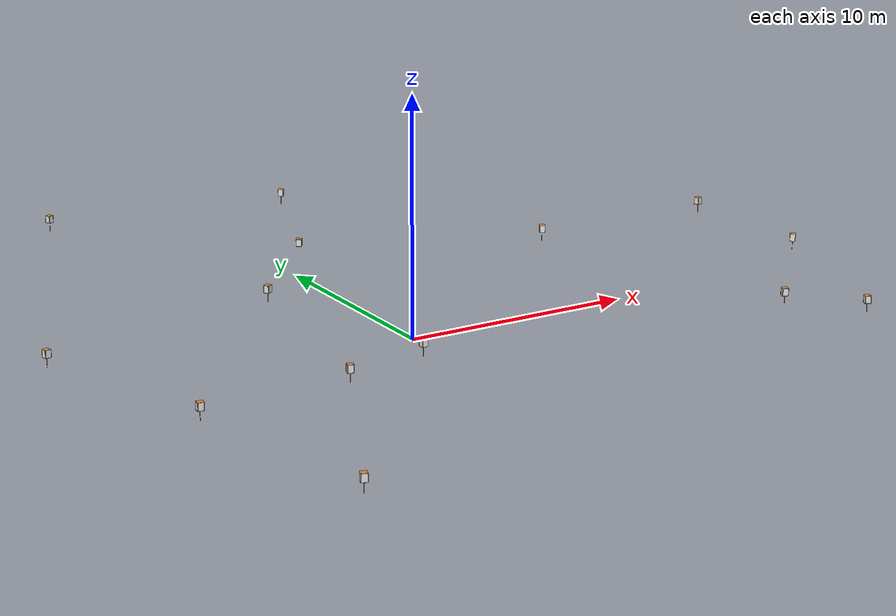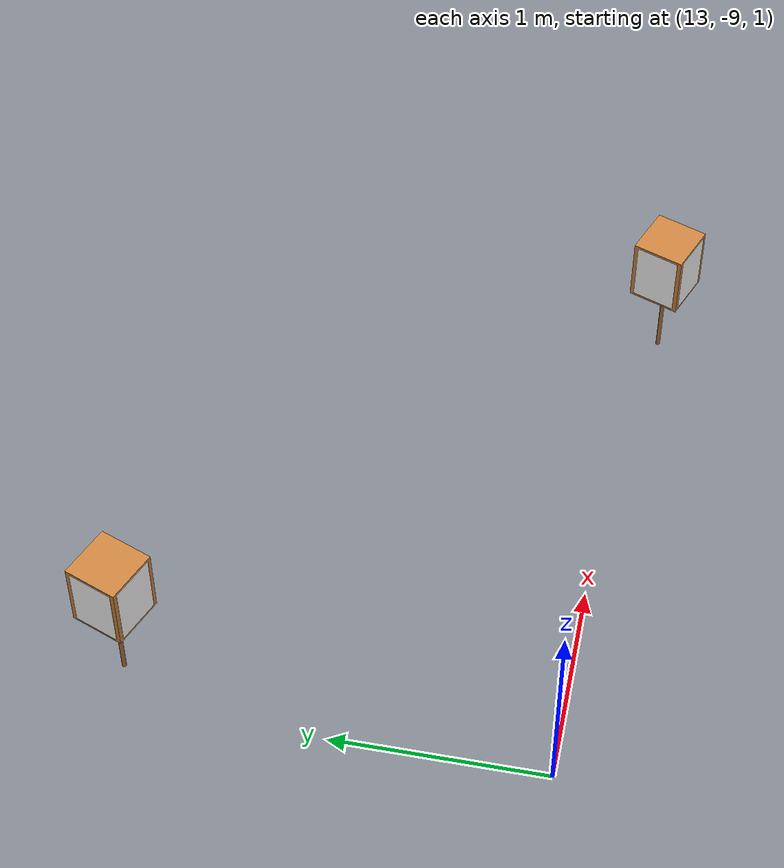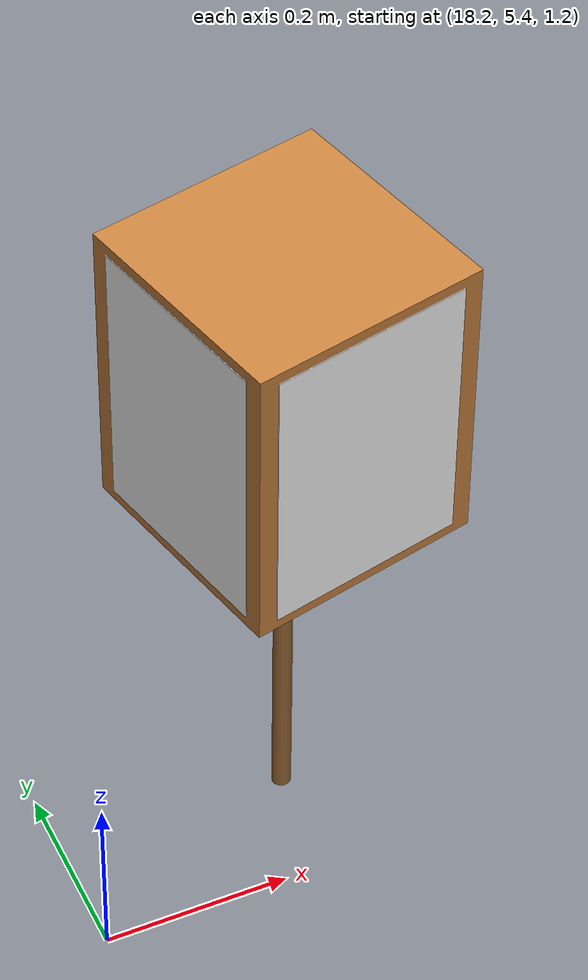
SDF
<sdf version="1.6">
 <world name="marsyard2021">
  <physics name="fast" type="bullet">
   <max_step_size>0.033</max_step_size>
   <real_time_factor>1.0</real_time_factor>
  </physics>
  <plugin filename="gz-sim-physics-system" name="gz::sim::systems::Physics"/>
  <plugin filename="gz-sim-scene-broadcaster-system" name="gz::sim::systems::SceneBroadcaster"/>
  <plugin filename="gz-sim-sensors-system" name="gz::sim::systems::Sensors">
   <render_engine>ogre2</render_engine>
  </plugin>
  <plugin filename="gz-sim-user-commands-system" name="gz::sim::systems::UserCommands"/>
  <plugin filename="WorldControl" name="World control">
   <gz-gui>
    <title>World control</title>
    <property key="showTitleBar" type="bool">false</property>
    <property key="resizable" type="bool">false</property>
    <property key="height" type="double">72</property>
    <property key="width" type="double">121</property>
    <property key="z" type="double">1</property>
    <property key="state" type="string">floating</property>
    <anchors target="3D View"><line own="left" target="left"/><line own="bottom" target="bottom"/></anchors>
   </gz-gui>
   <play_pause>true</play_pause>
   <step>true</step>
   <start_paused>true</start_paused>
   <service>/world/world_demo/control</service>
   <stats_topic>/world/world_demo/stats</stats_topic>
  </plugin>
  <light name="sun" type="directional">
   <pose>0 0 100 0 0.8 0</pose>
   <diffuse>1 1 1 1</diffuse>
   <specular>0.1 0.1 0.1 1</specular>
  </light>
  <scene>
   <ambient>0.6 0.6 0.6 1.0</ambient>
   <sky><clouds><speed>12</speed></clouds></sky>
   <shadows>true</shadows>
   <origin_visual>false</origin_visual>
  </scene>
  <model name="landmark1">
   <pose>-2.60 -5.17 1.42 0 0 0</pose>
   <static>true</static>
   <link name="landmark">
    <visual name="pole_visual">
     <pose>0 0 0.09999999999999999 0 0 0</pose>
     <geometry><cylinder><radius>0.01</radius><length>0.4</length></cylinder></geometry>
     <material>
      <ambient>0.3 0.2 0.1 1</ambient>
      <diffuse>0.6 0.4 0.2 1</diffuse>
      <specular>0.1 0.1 0.1 1</specular>
      <emissive>0 0 0 1</emissive>
     </material>
    </visual>
    <collision name="pole_collision">
     <pose>0 0 0.09999999999999999 0 0 0</pose>
     <geometry><cylinder><radius>0.01</radius><length>0.4</length></cylinder></geometry>
    </collision>
    <visual name="box_visual">
     <pose>0 0 0.45999999999999996 0 0 0</pose>
     <geometry><box><size>0.25 0.25 0.32</size></box></geometry>
     <material>
      <ambient>0.8 0.52 0.25 1.0</ambient>
      <diffuse>0.8 0.52 0.25 1.0</diffuse>
      <specular>0.1 0.1 0.1 1.0</specular>
      <emissive>0.0 0.0 0.0 1.0</emissive>
     </material>
    </visual>
    <collision name="box_collision">
     <pose>0 0 0.45999999999999996 0 0 0</pose>
     <geometry><box><size>0.25 0.25 0.32</size></box></geometry>
    </collision>
    <visual name="sheet1">
     <pose>0 0.1235 0.45999999999999996 0 0 0</pose>
     <geometry><box><size>0.21 0.005 0.297</size></box></geometry>
     <material>
      <double_sided>true</double_sided>
      <ambient>1 1 1 1</ambient>
      <diffuse>1 1 1 1</diffuse>
      <specular>1 1 1 1</specular>
      <emissive>0 0 0 1</emissive>
      <pbr>
       <metal>
        <albedo_map>model://materials/textures/erc_landmark_1.png</albedo_map>
        <roughness>0.5</roughness>
        <metalness>0.0</metalness>
       </metal>
      </pbr>
     </material>
    </visual>
    <visual name="sheet2">
     <pose>0 -0.1235 0.45999999999999996 0 0 0</pose>
     <geometry><box><size>0.21 0.005 0.297</size></box></geometry>
     <material>
      <double_sided>true</double_sided>
      <ambient>1 1 1 1</ambient>
      <diffuse>1 1 1 1</diffuse>
      <specular>1 1 1 1</specular>
      <emissive>0 0 0 1</emissive>
      <pbr>
       <metal>
        <albedo_map>model://materials/textures/erc_landmark_1.png</albedo_map>
        <roughness>0.5</roughness>
        <metalness>0.0</metalness>
       </metal>
      </pbr>
     </material>
    </visual>
    <visual name="sheet3">
     <pose>0.1235 0 0.45999999999999996 0 0 1.5707963267948966</pose>
     <geometry><box><size>0.21 0.005 0.297</size></box></geometry>
     <material>
      <double_sided>true</double_sided>
      <ambient>1 1 1 1</ambient>
      <diffuse>1 1 1 1</diffuse>
      <specular>1 1 1 1</specular>
      <emissive>0 0 0 1</emissive>
      <pbr>
       <metal>
        <albedo_map>model://materials/textures/erc_landmark_1.png</albedo_map>
        <roughness>0.5</roughness>
        <metalness>0.0</metalness>
       </metal>
      </pbr>
     </material>
    </visual>
    <visual name="sheet4">
     <pose>-0.1235 0 0.45999999999999996 0 0 1.5707963267948966</pose>
     <geometry><box><size>0.21 0.005 0.297</size></box></geometry>
     <material>
      <double_sided>true</double_sided>
      <ambient>1 1 1 1</ambient>
      <diffuse>1 1 1 1</diffuse>
      <specular>1 1 1 1</specular>
      <emissive>0 0 0 1</emissive>
      <pbr>
       <metal>
        <albedo_map>model://materials/textures/erc_landmark_1.png</albedo_map>
        <roughness>0.5</roughness>
        <metalness>0.0</metalness>
       </metal>
      </pbr>
     </material>
    </visual>
   </link>
  </model>
  <model name="landmark2">
   <pose>-6.05 -5.75 1.22 0 0 1.33</pose>
   <static>true</static>
   <link name="landmark">
    <visual name="pole_visual">
     <pose>0 0 0.09999999999999999 0 0 0</pose>
     <geometry><cylinder><radius>0.01</radius><length>0.4</length></cylinder></geometry>
     <material>
      <ambient>0.3 0.2 0.1 1</ambient>
      <diffuse>0.6 0.4 0.2 1</diffuse>
      <specular>0.1 0.1 0.1 1</specular>
      <emissive>0 0 0 1</emissive>
     </material>
    </visual>
    <collision name="pole_collision">
     <pose>0 0 0.09999999999999999 0 0 0</pose>
     <geometry><cylinder><radius>0.01</radius><length>0.4</length></cylinder></geometry>
    </collision>
    <visual name="box_visual">
     <pose>0 0 0.45999999999999996 0 0 0</pose>
     <geometry><box><size>0.25 0.25 0.32</size></box></geometry>
     <material>
      <ambient>0.8 0.52 0.25 1.0</ambient>
      <diffuse>0.8 0.52 0.25 1.0</diffuse>
      <specular>0.1 0.1 0.1 1.0</specular>
      <emissive>0.0 0.0 0.0 1.0</emissive>
     </material>
    </visual>
    <collision name="box_collision">
     <pose>0 0 0.45999999999999996 0 0 0</pose>
     <geometry><box><size>0.25 0.25 0.32</size></box></geometry>
    </collision>
    <visual name="sheet1">
     <pose>0 0.1235 0.45999999999999996 0 0 0</pose>
     <geometry><box><size>0.21 0.005 0.297</size></box></geometry>
     <material>
      <double_sided>true</double_sided>
      <ambient>1 1 1 1</ambient>
      <diffuse>1 1 1 1</diffuse>
      <specular>1 1 1 1</specular>
      <emissive>0 0 0 1</emissive>
      <pbr>
       <metal>
        <albedo_map>model://materials/textures/erc_landmark_2.png</albedo_map>
        <roughness>0.5</roughness>
        <metalness>0.0</metalness>
       </metal>
      </pbr>
     </material>
    </visual>
    <visual name="sheet2">
     <pose>0 -0.1235 0.45999999999999996 0 0 0</pose>
     <geometry><box><size>0.21 0.005 0.297</size></box></geometry>
     <material>
      <double_sided>true</double_sided>
      <ambient>1 1 1 1</ambient>
      <diffuse>1 1 1 1</diffuse>
      <specular>1 1 1 1</specular>
      <emissive>0 0 0 1</emissive>
      <pbr>
       <metal>
        <albedo_map>model://materials/textures/erc_landmark_2.png</albedo_map>
        <roughness>0.5</roughness>
        <metalness>0.0</metalness>
       </metal>
      </pbr>
     </material>
    </visual>
    <visual name="sheet3">
     <pose>0.1235 0 0.45999999999999996 0 0 1.5707963267948966</pose>
     <geometry><box><size>0.21 0.005 0.297</size></box></geometry>
     <material>
      <double_sided>true</double_sided>
      <ambient>1 1 1 1</ambient>
      <diffuse>1 1 1 1</diffuse>
      <specular>1 1 1 1</specular>
      <emissive>0 0 0 1</emissive>
      <pbr>
       <metal>
        <albedo_map>model://materials/textures/erc_landmark_2.png</albedo_map>
        <roughness>0.5</roughness>
        <metalness>0.0</metalness>
       </metal>
      </pbr>
     </material>
    </visual>
    <visual name="sheet4">
     <pose>-0.1235 0 0.45999999999999996 0 0 1.5707963267948966</pose>
     <geometry><box><size>0.21 0.005 0.297</size></box></geometry>
     <material>
      <double_sided>true</double_sided>
      <ambient>1 1 1 1</ambient>
      <diffuse>1 1 1 1</diffuse>
      <specular>1 1 1 1</specular>
      <emissive>0 0 0 1</emissive>
      <pbr>
       <metal>
        <albedo_map>model://materials/textures/erc_landmark_2.png</albedo_map>
        <roughness>0.5</roughness>
        <metalness>0.0</metalness>
       </metal>
      </pbr>
     </material>
    </visual>
   </link>
  </model>
  <model name="landmark3">
   <pose>-7.93 18.45 1.21 0 0 0.35</pose>
   <static>true</static>
   <link name="landmark">
    <visual name="pole_visual">
     <pose>0 0 0.09999999999999999 0 0 0</pose>
     <geometry><cylinder><radius>0.01</radius><length>0.4</length></cylinder></geometry>
     <material>
      <ambient>0.3 0.2 0.1 1</ambient>
      <diffuse>0.6 0.4 0.2 1</diffuse>
      <specular>0.1 0.1 0.1 1</specular>
      <emissive>0 0 0 1</emissive>
     </material>
    </visual>
    <collision name="pole_collision">
     <pose>0 0 0.09999999999999999 0 0 0</pose>
     <geometry><cylinder><radius>0.01</radius><length>0.4</length></cylinder></geometry>
    </collision>
    <visual name="box_visual">
     <pose>0 0 0.45999999999999996 0 0 0</pose>
     <geometry><box><size>0.25 0.25 0.32</size></box></geometry>
     <material>
      <ambient>0.8 0.52 0.25 1.0</ambient>
      <diffuse>0.8 0.52 0.25 1.0</diffuse>
      <specular>0.1 0.1 0.1 1.0</specular>
      <emissive>0.0 0.0 0.0 1.0</emissive>
     </material>
    </visual>
    <collision name="box_collision">
     <pose>0 0 0.45999999999999996 0 0 0</pose>
     <geometry><box><size>0.25 0.25 0.32</size></box></geometry>
    </collision>
    <visual name="sheet1">
     <pose>0 0.1235 0.45999999999999996 0 0 0</pose>
     <geometry><box><size>0.21 0.005 0.297</size></box></geometry>
     <material>
      <double_sided>true</double_sided>
      <ambient>1 1 1 1</ambient>
      <diffuse>1 1 1 1</diffuse>
      <specular>1 1 1 1</specular>
      <emissive>0 0 0 1</emissive>
      <pbr>
       <metal>
        <albedo_map>model://materials/textures/erc_landmark_3.png</albedo_map>
        <roughness>0.5</roughness>
        <metalness>0.0</metalness>
       </metal>
      </pbr>
     </material>
    </visual>
    <visual name="sheet2">
     <pose>0 -0.1235 0.45999999999999996 0 0 0</pose>
     <geometry><box><size>0.21 0.005 0.297</size></box></geometry>
     <material>
      <double_sided>true</double_sided>
      <ambient>1 1 1 1</ambient>
      <diffuse>1 1 1 1</diffuse>
      <specular>1 1 1 1</specular>
      <emissive>0 0 0 1</emissive>
      <pbr>
       <metal>
        <albedo_map>model://materials/textures/erc_landmark_3.png</albedo_map>
        <roughness>0.5</roughness>
        <metalness>0.0</metalness>
       </metal>
      </pbr>
     </material>
    </visual>
    <visual name="sheet3">
     <pose>0.1235 0 0.45999999999999996 0 0 1.5707963267948966</pose>
     <geometry><box><size>0.21 0.005 0.297</size></box></geometry>
     <material>
      <double_sided>true</double_sided>
      <ambient>1 1 1 1</ambient>
      <diffuse>1 1 1 1</diffuse>
      <specular>1 1 1 1</specular>
      <emissive>0 0 0 1</emissive>
      <pbr>
       <metal>
        <albedo_map>model://materials/textures/erc_landmark_3.png</albedo_map>
        <roughness>0.5</roughness>
        <metalness>0.0</metalness>
       </metal>
      </pbr>
     </material>
    </visual>
    <visual name="sheet4">
     <pose>-0.1235 0 0.45999999999999996 0 0 1.5707963267948966</pose>
     <geometry><box><size>0.21 0.005 0.297</size></box></geometry>
     <material>
      <double_sided>true</double_sided>
      <ambient>1 1 1 1</ambient>
      <diffuse>1 1 1 1</diffuse>
      <specular>1 1 1 1</specular>
      <emissive>0 0 0 1</emissive>
      <pbr>
       <metal>
        <albedo_map>model://materials/textures/erc_landmark_3.png</albedo_map>
        <roughness>0.5</roughness>
        <metalness>0.0</metalness>
       </metal>
      </pbr>
     </material>
    </visual>
   </link>
  </model>
  <model name="landmark4">
   <pose>-0.23 9.19 1.29 0 0 0.98</pose>
   <static>true</static>
   <link name="landmark">
    <visual name="pole_visual">
     <pose>0 0 0.09999999999999999 0 0 0</pose>
     <geometry><cylinder><radius>0.01</radius><length>0.4</length></cylinder></geometry>
     <material>
      <ambient>0.3 0.2 0.1 1</ambient>
      <diffuse>0.6 0.4 0.2 1</diffuse>
      <specular>0.1 0.1 0.1 1</specular>
      <emissive>0 0 0 1</emissive>
     </material>
    </visual>
    <collision name="pole_collision">
     <pose>0 0 0.09999999999999999 0 0 0</pose>
     <geometry><cylinder><radius>0.01</radius><length>0.4</length></cylinder></geometry>
    </collision>
    <visual name="box_visual">
     <pose>0 0 0.45999999999999996 0 0 0</pose>
     <geometry><box><size>0.25 0.25 0.32</size></box></geometry>
     <material>
      <ambient>0.8 0.52 0.25 1.0</ambient>
      <diffuse>0.8 0.52 0.25 1.0</diffuse>
      <specular>0.1 0.1 0.1 1.0</specular>
      <emissive>0.0 0.0 0.0 1.0</emissive>
     </material>
    </visual>
    <collision name="box_collision">
     <pose>0 0 0.45999999999999996 0 0 0</pose>
     <geometry><box><size>0.25 0.25 0.32</size></box></geometry>
    </collision>
    <visual name="sheet1">
     <pose>0 0.1235 0.45999999999999996 0 0 0</pose>
     <geometry><box><size>0.21 0.005 0.297</size></box></geometry>
     <material>
      <double_sided>true</double_sided>
      <ambient>1 1 1 1</ambient>
      <diffuse>1 1 1 1</diffuse>
      <specular>1 1 1 1</specular>
      <emissive>0 0 0 1</emissive>
      <pbr>
       <metal>
        <albedo_map>model://materials/textures/erc_landmark_4.png</albedo_map>
        <roughness>0.5</roughness>
        <metalness>0.0</metalness>
       </metal>
      </pbr>
     </material>
    </visual>
    <visual name="sheet2">
     <pose>0 -0.1235 0.45999999999999996 0 0 0</pose>
     <geometry><box><size>0.21 0.005 0.297</size></box></geometry>
     <material>
      <double_sided>true</double_sided>
      <ambient>1 1 1 1</ambient>
      <diffuse>1 1 1 1</diffuse>
      <specular>1 1 1 1</specular>
      <emissive>0 0 0 1</emissive>
      <pbr>
       <metal>
        <albedo_map>model://materials/textures/erc_landmark_4.png</albedo_map>
        <roughness>0.5</roughness>
        <metalness>0.0</metalness>
       </metal>
      </pbr>
     </material>
    </visual>
    <visual name="sheet3">
     <pose>0.1235 0 0.45999999999999996 0 0 1.5707963267948966</pose>
     <geometry><box><size>0.21 0.005 0.297</size></box></geometry>
     <material>
      <double_sided>true</double_sided>
      <ambient>1 1 1 1</ambient>
      <diffuse>1 1 1 1</diffuse>
      <specular>1 1 1 1</specular>
      <emissive>0 0 0 1</emissive>
      <pbr>
       <metal>
        <albedo_map>model://materials/textures/erc_landmark_4.png</albedo_map>
        <roughness>0.5</roughness>
        <metalness>0.0</metalness>
       </metal>
      </pbr>
     </material>
    </visual>
    <visual name="sheet4">
     <pose>-0.1235 0 0.45999999999999996 0 0 1.5707963267948966</pose>
     <geometry><box><size>0.21 0.005 0.297</size></box></geometry>
     <material>
      <double_sided>true</double_sided>
      <ambient>1 1 1 1</ambient>
      <diffuse>1 1 1 1</diffuse>
      <specular>1 1 1 1</specular>
      <emissive>0 0 0 1</emissive>
      <pbr>
       <metal>
        <albedo_map>model://materials/textures/erc_landmark_4.png</albedo_map>
        <roughness>0.5</roughness>
        <metalness>0.0</metalness>
       </metal>
      </pbr>
     </material>
    </visual>
   </link>
  </model>
  <model name="landmark5">
   <pose>-12.3 -6.28 1.16 0 0 1.47</pose>
   <static>true</static>
   <link name="landmark">
    <visual name="pole_visual">
     <pose>0 0 0.09999999999999999 0 0 0</pose>
     <geometry><cylinder><radius>0.01</radius><length>0.4</length></cylinder></geometry>
     <material>
      <ambient>0.3 0.2 0.1 1</ambient>
      <diffuse>0.6 0.4 0.2 1</diffuse>
      <specular>0.1 0.1 0.1 1</specular>
      <emissive>0 0 0 1</emissive>
     </material>
    </visual>
    <collision name="pole_collision">
     <pose>0 0 0.09999999999999999 0 0 0</pose>
     <geometry><cylinder><radius>0.01</radius><length>0.4</length></cylinder></geometry>
    </collision>
    <visual name="box_visual">
     <pose>0 0 0.45999999999999996 0 0 0</pose>
     <geometry><box><size>0.25 0.25 0.32</size></box></geometry>
     <material>
      <ambient>0.8 0.52 0.25 1.0</ambient>
      <diffuse>0.8 0.52 0.25 1.0</diffuse>
      <specular>0.1 0.1 0.1 1.0</specular>
      <emissive>0.0 0.0 0.0 1.0</emissive>
     </material>
    </visual>
    <collision name="box_collision">
     <pose>0 0 0.45999999999999996 0 0 0</pose>
     <geometry><box><size>0.25 0.25 0.32</size></box></geometry>
    </collision>
    <visual name="sheet1">
     <pose>0 0.1235 0.45999999999999996 0 0 0</pose>
     <geometry><box><size>0.21 0.005 0.297</size></box></geometry>
     <material>
      <double_sided>true</double_sided>
      <ambient>1 1 1 1</ambient>
      <diffuse>1 1 1 1</diffuse>
      <specular>1 1 1 1</specular>
      <emissive>0 0 0 1</emissive>
      <pbr>
       <metal>
        <albedo_map>model://materials/textures/erc_landmark_5.png</albedo_map>
        <roughness>0.5</roughness>
        <metalness>0.0</metalness>
       </metal>
      </pbr>
     </material>
    </visual>
    <visual name="sheet2">
     <pose>0 -0.1235 0.45999999999999996 0 0 0</pose>
     <geometry><box><size>0.21 0.005 0.297</size></box></geometry>
     <material>
      <double_sided>true</double_sided>
      <ambient>1 1 1 1</ambient>
      <diffuse>1 1 1 1</diffuse>
      <specular>1 1 1 1</specular>
      <emissive>0 0 0 1</emissive>
      <pbr>
       <metal>
        <albedo_map>model://materials/textures/erc_landmark_5.png</albedo_map>
        <roughness>0.5</roughness>
        <metalness>0.0</metalness>
       </metal>
      </pbr>
     </material>
    </visual>
    <visual name="sheet3">
     <pose>0.1235 0 0.45999999999999996 0 0 1.5707963267948966</pose>
     <geometry><box><size>0.21 0.005 0.297</size></box></geometry>
     <material>
      <double_sided>true</double_sided>
      <ambient>1 1 1 1</ambient>
      <diffuse>1 1 1 1</diffuse>
      <specular>1 1 1 1</specular>
      <emissive>0 0 0 1</emissive>
      <pbr>
       <metal>
        <albedo_map>model://materials/textures/erc_landmark_5.png</albedo_map>
        <roughness>0.5</roughness>
        <metalness>0.0</metalness>
       </metal>
      </pbr>
     </material>
    </visual>
    <visual name="sheet4">
     <pose>-0.1235 0 0.45999999999999996 0 0 1.5707963267948966</pose>
     <geometry><box><size>0.21 0.005 0.297</size></box></geometry>
     <material>
      <double_sided>true</double_sided>
      <ambient>1 1 1 1</ambient>
      <diffuse>1 1 1 1</diffuse>
      <specular>1 1 1 1</specular>
      <emissive>0 0 0 1</emissive>
      <pbr>
       <metal>
        <albedo_map>model://materials/textures/erc_landmark_5.png</albedo_map>
        <roughness>0.5</roughness>
        <metalness>0.0</metalness>
       </metal>
      </pbr>
     </material>
    </visual>
   </link>
  </model>
  <model name="landmark6">
   <pose>18.46 -1.15 1.28 0 0 0.83</pose>
   <static>true</static>
   <link name="landmark">
    <visual name="pole_visual">
     <pose>0 0 0.09999999999999999 0 0 0</pose>
     <geometry><cylinder><radius>0.01</radius><length>0.4</length></cylinder></geometry>
     <material>
      <ambient>0.3 0.2 0.1 1</ambient>
      <diffuse>0.6 0.4 0.2 1</diffuse>
      <specular>0.1 0.1 0.1 1</specular>
      <emissive>0 0 0 1</emissive>
     </material>
    </visual>
    <collision name="pole_collision">
     <pose>0 0 0.09999999999999999 0 0 0</pose>
     <geometry><cylinder><radius>0.01</radius><length>0.4</length></cylinder></geometry>
    </collision>
    <visual name="box_visual">
     <pose>0 0 0.45999999999999996 0 0 0</pose>
     <geometry><box><size>0.25 0.25 0.32</size></box></geometry>
     <material>
      <ambient>0.8 0.52 0.25 1.0</ambient>
      <diffuse>0.8 0.52 0.25 1.0</diffuse>
      <specular>0.1 0.1 0.1 1.0</specular>
      <emissive>0.0 0.0 0.0 1.0</emissive>
     </material>
    </visual>
    <collision name="box_collision">
     <pose>0 0 0.45999999999999996 0 0 0</pose>
     <geometry><box><size>0.25 0.25 0.32</size></box></geometry>
    </collision>
    <visual name="sheet1">
     <pose>0 0.1235 0.45999999999999996 0 0 0</pose>
     <geometry><box><size>0.21 0.005 0.297</size></box></geometry>
     <material>
      <double_sided>true</double_sided>
      <ambient>1 1 1 1</ambient>
      <diffuse>1 1 1 1</diffuse>
      <specular>1 1 1 1</specular>
      <emissive>0 0 0 1</emissive>
      <pbr>
       <metal>
        <albedo_map>model://materials/textures/erc_landmark_6.png</albedo_map>
        <roughness>0.5</roughness>
        <metalness>0.0</metalness>
       </metal>
      </pbr>
     </material>
    </visual>
    <visual name="sheet2">
     <pose>0 -0.1235 0.45999999999999996 0 0 0</pose>
     <geometry><box><size>0.21 0.005 0.297</size></box></geometry>
     <material>
      <double_sided>true</double_sided>
      <ambient>1 1 1 1</ambient>
      <diffuse>1 1 1 1</diffuse>
      <specular>1 1 1 1</specular>
      <emissive>0 0 0 1</emissive>
      <pbr>
       <metal>
        <albedo_map>model://materials/textures/erc_landmark_6.png</albedo_map>
        <roughness>0.5</roughness>
        <metalness>0.0</metalness>
       </metal>
      </pbr>
     </material>
    </visual>
    <visual name="sheet3">
     <pose>0.1235 0 0.45999999999999996 0 0 1.5707963267948966</pose>
     <geometry><box><size>0.21 0.005 0.297</size></box></geometry>
     <material>
      <double_sided>true</double_sided>
      <ambient>1 1 1 1</ambient>
      <diffuse>1 1 1 1</diffuse>
      <specular>1 1 1 1</specular>
      <emissive>0 0 0 1</emissive>
      <pbr>
       <metal>
        <albedo_map>model://materials/textures/erc_landmark_6.png</albedo_map>
        <roughness>0.5</roughness>
        <metalness>0.0</metalness>
       </metal>
      </pbr>
     </material>
    </visual>
    <visual name="sheet4">
     <pose>-0.1235 0 0.45999999999999996 0 0 1.5707963267948966</pose>
     <geometry><box><size>0.21 0.005 0.297</size></box></geometry>
     <material>
      <double_sided>true</double_sided>
      <ambient>1 1 1 1</ambient>
      <diffuse>1 1 1 1</diffuse>
      <specular>1 1 1 1</specular>
      <emissive>0 0 0 1</emissive>
      <pbr>
       <metal>
        <albedo_map>model://materials/textures/erc_landmark_6.png</albedo_map>
        <roughness>0.5</roughness>
        <metalness>0.0</metalness>
       </metal>
      </pbr>
     </material>
    </visual>
   </link>
  </model>
  <model name="landmark7">
   <pose>13.07 -7.09 1.32 0 0 1.19</pose>
   <static>true</static>
   <link name="landmark">
    <visual name="pole_visual">
     <pose>0 0 0.09999999999999999 0 0 0</pose>
     <geometry><cylinder><radius>0.01</radius><length>0.4</length></cylinder></geometry>
     <material>
      <ambient>0.3 0.2 0.1 1</ambient>
      <diffuse>0.6 0.4 0.2 1</diffuse>
      <specular>0.1 0.1 0.1 1</specular>
      <emissive>0 0 0 1</emissive>
     </material>
    </visual>
    <collision name="pole_collision">
     <pose>0 0 0.09999999999999999 0 0 0</pose>
     <geometry><cylinder><radius>0.01</radius><length>0.4</length></cylinder></geometry>
    </collision>
    <visual name="box_visual">
     <pose>0 0 0.45999999999999996 0 0 0</pose>
     <geometry><box><size>0.25 0.25 0.32</size></box></geometry>
     <material>
      <ambient>0.8 0.52 0.25 1.0</ambient>
      <diffuse>0.8 0.52 0.25 1.0</diffuse>
      <specular>0.1 0.1 0.1 1.0</specular>
      <emissive>0.0 0.0 0.0 1.0</emissive>
     </material>
    </visual>
    <collision name="box_collision">
     <pose>0 0 0.45999999999999996 0 0 0</pose>
     <geometry><box><size>0.25 0.25 0.32</size></box></geometry>
    </collision>
    <visual name="sheet1">
     <pose>0 0.1235 0.45999999999999996 0 0 0</pose>
     <geometry><box><size>0.21 0.005 0.297</size></box></geometry>
     <material>
      <double_sided>true</double_sided>
      <ambient>1 1 1 1</ambient>
      <diffuse>1 1 1 1</diffuse>
      <specular>1 1 1 1</specular>
      <emissive>0 0 0 1</emissive>
      <pbr>
       <metal>
        <albedo_map>model://materials/textures/erc_landmark_7.png</albedo_map>
        <roughness>0.5</roughness>
        <metalness>0.0</metalness>
       </metal>
      </pbr>
     </material>
    </visual>
    <visual name="sheet2">
     <pose>0 -0.1235 0.45999999999999996 0 0 0</pose>
     <geometry><box><size>0.21 0.005 0.297</size></box></geometry>
     <material>
      <double_sided>true</double_sided>
      <ambient>1 1 1 1</ambient>
      <diffuse>1 1 1 1</diffuse>
      <specular>1 1 1 1</specular>
      <emissive>0 0 0 1</emissive>
      <pbr>
       <metal>
        <albedo_map>model://materials/textures/erc_landmark_7.png</albedo_map>
        <roughness>0.5</roughness>
        <metalness>0.0</metalness>
       </metal>
      </pbr>
     </material>
    </visual>
    <visual name="sheet3">
     <pose>0.1235 0 0.45999999999999996 0 0 1.5707963267948966</pose>
     <geometry><box><size>0.21 0.005 0.297</size></box></geometry>
     <material>
      <double_sided>true</double_sided>
      <ambient>1 1 1 1</ambient>
      <diffuse>1 1 1 1</diffuse>
      <specular>1 1 1 1</specular>
      <emissive>0 0 0 1</emissive>
      <pbr>
       <metal>
        <albedo_map>model://materials/textures/erc_landmark_7.png</albedo_map>
        <roughness>0.5</roughness>
        <metalness>0.0</metalness>
       </metal>
      </pbr>
     </material>
    </visual>
    <visual name="sheet4">
     <pose>-0.1235 0 0.45999999999999996 0 0 1.5707963267948966</pose>
     <geometry><box><size>0.21 0.005 0.297</size></box></geometry>
     <material>
      <double_sided>true</double_sided>
      <ambient>1 1 1 1</ambient>
      <diffuse>1 1 1 1</diffuse>
      <specular>1 1 1 1</specular>
      <emissive>0 0 0 1</emissive>
      <pbr>
       <metal>
        <albedo_map>model://materials/textures/erc_landmark_7.png</albedo_map>
        <roughness>0.5</roughness>
        <metalness>0.0</metalness>
       </metal>
      </pbr>
     </material>
    </visual>
   </link>
  </model>
  <model name="landmark8">
   <pose>3.05 17.20 1.19 0 0 0.95</pose>
   <static>true</static>
   <link name="landmark">
    <visual name="pole_visual">
     <pose>0 0 0.09999999999999999 0 0 0</pose>
     <geometry><cylinder><radius>0.01</radius><length>0.4</length></cylinder></geometry>
     <material>
      <ambient>0.3 0.2 0.1 1</ambient>
      <diffuse>0.6 0.4 0.2 1</diffuse>
      <specular>0.1 0.1 0.1 1</specular>
      <emissive>0 0 0 1</emissive>
     </material>
    </visual>
    <collision name="pole_collision">
     <pose>0 0 0.09999999999999999 0 0 0</pose>
     <geometry><cylinder><radius>0.01</radius><length>0.4</length></cylinder></geometry>
    </collision>
    <visual name="box_visual">
     <pose>0 0 0.45999999999999996 0 0 0</pose>
     <geometry><box><size>0.25 0.25 0.32</size></box></geometry>
     <material>
      <ambient>0.8 0.52 0.25 1.0</ambient>
      <diffuse>0.8 0.52 0.25 1.0</diffuse>
      <specular>0.1 0.1 0.1 1.0</specular>
      <emissive>0.0 0.0 0.0 1.0</emissive>
     </material>
    </visual>
    <collision name="box_collision">
     <pose>0 0 0.45999999999999996 0 0 0</pose>
     <geometry><box><size>0.25 0.25 0.32</size></box></geometry>
    </collision>
    <visual name="sheet1">
     <pose>0 0.1235 0.45999999999999996 0 0 0</pose>
     <geometry><box><size>0.21 0.005 0.297</size></box></geometry>
     <material>
      <double_sided>true</double_sided>
      <ambient>1 1 1 1</ambient>
      <diffuse>1 1 1 1</diffuse>
      <specular>1 1 1 1</specular>
      <emissive>0 0 0 1</emissive>
      <pbr>
       <metal>
        <albedo_map>model://materials/textures/erc_landmark_8.png</albedo_map>
        <roughness>0.5</roughness>
        <metalness>0.0</metalness>
       </metal>
      </pbr>
     </material>
    </visual>
    <visual name="sheet2">
     <pose>0 -0.1235 0.45999999999999996 0 0 0</pose>
     <geometry><box><size>0.21 0.005 0.297</size></box></geometry>
     <material>
      <double_sided>true</double_sided>
      <ambient>1 1 1 1</ambient>
      <diffuse>1 1 1 1</diffuse>
      <specular>1 1 1 1</specular>
      <emissive>0 0 0 1</emissive>
      <pbr>
       <metal>
        <albedo_map>model://materials/textures/erc_landmark_8.png</albedo_map>
        <roughness>0.5</roughness>
        <metalness>0.0</metalness>
       </metal>
      </pbr>
     </material>
    </visual>
    <visual name="sheet3">
     <pose>0.1235 0 0.45999999999999996 0 0 1.5707963267948966</pose>
     <geometry><box><size>0.21 0.005 0.297</size></box></geometry>
     <material>
      <double_sided>true</double_sided>
      <ambient>1 1 1 1</ambient>
      <diffuse>1 1 1 1</diffuse>
      <specular>1 1 1 1</specular>
      <emissive>0 0 0 1</emissive>
      <pbr>
       <metal>
        <albedo_map>model://materials/textures/erc_landmark_8.png</albedo_map>
        <roughness>0.5</roughness>
        <metalness>0.0</metalness>
       </metal>
      </pbr>
     </material>
    </visual>
    <visual name="sheet4">
     <pose>-0.1235 0 0.45999999999999996 0 0 1.5707963267948966</pose>
     <geometry><box><size>0.21 0.005 0.297</size></box></geometry>
     <material>
      <double_sided>true</double_sided>
      <ambient>1 1 1 1</ambient>
      <diffuse>1 1 1 1</diffuse>
      <specular>1 1 1 1</specular>
      <emissive>0 0 0 1</emissive>
      <pbr>
       <metal>
        <albedo_map>model://materials/textures/erc_landmark_8.png</albedo_map>
        <roughness>0.5</roughness>
        <metalness>0.0</metalness>
       </metal>
      </pbr>
     </material>
    </visual>
   </link>
  </model>
  <model name="landmark9">
   <pose>-14.82 1.52 1.20 0 0 0.16</pose>
   <static>true</static>
   <link name="landmark">
    <visual name="pole_visual">
     <pose>0 0 0.09999999999999999 0 0 0</pose>
     <geometry><cylinder><radius>0.01</radius><length>0.4</length></cylinder></geometry>
     <material>
      <ambient>0.3 0.2 0.1 1</ambient>
      <diffuse>0.6 0.4 0.2 1</diffuse>
      <specular>0.1 0.1 0.1 1</specular>
      <emissive>0 0 0 1</emissive>
     </material>
    </visual>
    <collision name="pole_collision">
     <pose>0 0 0.09999999999999999 0 0 0</pose>
     <geometry><cylinder><radius>0.01</radius><length>0.4</length></cylinder></geometry>
    </collision>
    <visual name="box_visual">
     <pose>0 0 0.45999999999999996 0 0 0</pose>
     <geometry><box><size>0.25 0.25 0.32</size></box></geometry>
     <material>
      <ambient>0.8 0.52 0.25 1.0</ambient>
      <diffuse>0.8 0.52 0.25 1.0</diffuse>
      <specular>0.1 0.1 0.1 1.0</specular>
      <emissive>0.0 0.0 0.0 1.0</emissive>
     </material>
    </visual>
    <collision name="box_collision">
     <pose>0 0 0.45999999999999996 0 0 0</pose>
     <geometry><box><size>0.25 0.25 0.32</size></box></geometry>
    </collision>
    <visual name="sheet1">
     <pose>0 0.1235 0.45999999999999996 0 0 0</pose>
     <geometry><box><size>0.21 0.005 0.297</size></box></geometry>
     <material>
      <double_sided>true</double_sided>
      <ambient>1 1 1 1</ambient>
      <diffuse>1 1 1 1</diffuse>
      <specular>1 1 1 1</specular>
      <emissive>0 0 0 1</emissive>
      <pbr>
       <metal>
        <albedo_map>model://materials/textures/erc_landmark_9.png</albedo_map>
        <roughness>0.5</roughness>
        <metalness>0.0</metalness>
       </metal>
      </pbr>
     </material>
    </visual>
    <visual name="sheet2">
     <pose>0 -0.1235 0.45999999999999996 0 0 0</pose>
     <geometry><box><size>0.21 0.005 0.297</size></box></geometry>
     <material>
      <double_sided>true</double_sided>
      <ambient>1 1 1 1</ambient>
      <diffuse>1 1 1 1</diffuse>
      <specular>1 1 1 1</specular>
      <emissive>0 0 0 1</emissive>
      <pbr>
       <metal>
        <albedo_map>model://materials/textures/erc_landmark_9.png</albedo_map>
        <roughness>0.5</roughness>
        <metalness>0.0</metalness>
       </metal>
      </pbr>
     </material>
    </visual>
    <visual name="sheet3">
     <pose>0.1235 0 0.45999999999999996 0 0 1.5707963267948966</pose>
     <geometry><box><size>0.21 0.005 0.297</size></box></geometry>
     <material>
      <double_sided>true</double_sided>
      <ambient>1 1 1 1</ambient>
      <diffuse>1 1 1 1</diffuse>
      <specular>1 1 1 1</specular>
      <emissive>0 0 0 1</emissive>
      <pbr>
       <metal>
        <albedo_map>model://materials/textures/erc_landmark_9.png</albedo_map>
        <roughness>0.5</roughness>
        <metalness>0.0</metalness>
       </metal>
      </pbr>
     </material>
    </visual>
    <visual name="sheet4">
     <pose>-0.1235 0 0.45999999999999996 0 0 1.5707963267948966</pose>
     <geometry><box><size>0.21 0.005 0.297</size></box></geometry>
     <material>
      <double_sided>true</double_sided>
      <ambient>1 1 1 1</ambient>
      <diffuse>1 1 1 1</diffuse>
      <specular>1 1 1 1</specular>
      <emissive>0 0 0 1</emissive>
      <pbr>
       <metal>
        <albedo_map>model://materials/textures/erc_landmark_9.png</albedo_map>
        <roughness>0.5</roughness>
        <metalness>0.0</metalness>
       </metal>
      </pbr>
     </material>
    </visual>
   </link>
  </model>
  <model name="landmark10">
   <pose>-10.74 -15.05 1.29 0 0 1.27</pose>
   <static>true</static>
   <link name="landmark">
    <visual name="pole_visual">
     <pose>0 0 0.09999999999999999 0 0 0</pose>
     <geometry><cylinder><radius>0.01</radius><length>0.4</length></cylinder></geometry>
     <material>
      <ambient>0.3 0.2 0.1 1</ambient>
      <diffuse>0.6 0.4 0.2 1</diffuse>
      <specular>0.1 0.1 0.1 1</specular>
      <emissive>0 0 0 1</emissive>
     </material>
    </visual>
    <collision name="pole_collision">
     <pose>0 0 0.09999999999999999 0 0 0</pose>
     <geometry><cylinder><radius>0.01</radius><length>0.4</length></cylinder></geometry>
    </collision>
    <visual name="box_visual">
     <pose>0 0 0.45999999999999996 0 0 0</pose>
     <geometry><box><size>0.25 0.25 0.32</size></box></geometry>
     <material>
      <ambient>0.8 0.52 0.25 1.0</ambient>
      <diffuse>0.8 0.52 0.25 1.0</diffuse>
      <specular>0.1 0.1 0.1 1.0</specular>
      <emissive>0.0 0.0 0.0 1.0</emissive>
     </material>
    </visual>
    <collision name="box_collision">
     <pose>0 0 0.45999999999999996 0 0 0</pose>
     <geometry><box><size>0.25 0.25 0.32</size></box></geometry>
    </collision>
    <visual name="sheet1">
     <pose>0 0.1235 0.45999999999999996 0 0 0</pose>
     <geometry><box><size>0.21 0.005 0.297</size></box></geometry>
     <material>
      <double_sided>true</double_sided>
      <ambient>1 1 1 1</ambient>
      <diffuse>1 1 1 1</diffuse>
      <specular>1 1 1 1</specular>
      <emissive>0 0 0 1</emissive>
      <pbr>
       <metal>
        <albedo_map>model://materials/textures/erc_landmark_10.png</albedo_map>
        <roughness>0.5</roughness>
        <metalness>0.0</metalness>
       </metal>
      </pbr>
     </material>
    </visual>
    <visual name="sheet2">
     <pose>0 -0.1235 0.45999999999999996 0 0 0</pose>
     <geometry><box><size>0.21 0.005 0.297</size></box></geometry>
     <material>
      <double_sided>true</double_sided>
      <ambient>1 1 1 1</ambient>
      <diffuse>1 1 1 1</diffuse>
      <specular>1 1 1 1</specular>
      <emissive>0 0 0 1</emissive>
      <pbr>
       <metal>
        <albedo_map>model://materials/textures/erc_landmark_10.png</albedo_map>
        <roughness>0.5</roughness>
        <metalness>0.0</metalness>
       </metal>
      </pbr>
     </material>
    </visual>
    <visual name="sheet3">
     <pose>0.1235 0 0.45999999999999996 0 0 1.5707963267948966</pose>
     <geometry><box><size>0.21 0.005 0.297</size></box></geometry>
     <material>
      <double_sided>true</double_sided>
      <ambient>1 1 1 1</ambient>
      <diffuse>1 1 1 1</diffuse>
      <specular>1 1 1 1</specular>
      <emissive>0 0 0 1</emissive>
      <pbr>
       <metal>
        <albedo_map>model://materials/textures/erc_landmark_10.png</albedo_map>
        <roughness>0.5</roughness>
        <metalness>0.0</metalness>
       </metal>
      </pbr>
     </material>
    </visual>
    <visual name="sheet4">
     <pose>-0.1235 0 0.45999999999999996 0 0 1.5707963267948966</pose>
     <geometry><box><size>0.21 0.005 0.297</size></box></geometry>
     <material>
      <double_sided>true</double_sided>
      <ambient>1 1 1 1</ambient>
      <diffuse>1 1 1 1</diffuse>
      <specular>1 1 1 1</specular>
      <emissive>0 0 0 1</emissive>
      <pbr>
       <metal>
        <albedo_map>model://materials/textures/erc_landmark_10.png</albedo_map>
        <roughness>0.5</roughness>
        <metalness>0.0</metalness>
       </metal>
      </pbr>
     </material>
    </visual>
   </link>
  </model>
  <model name="landmark11">
   <pose>18.43 5.48 1.36 0 0 0.23</pose>
   <static>true</static>
   <link name="landmark">
    <visual name="pole_visual">
     <pose>0 0 0.09999999999999999 0 0 0</pose>
     <geometry><cylinder><radius>0.01</radius><length>0.4</length></cylinder></geometry>
     <material>
      <ambient>0.3 0.2 0.1 1</ambient>
      <diffuse>0.6 0.4 0.2 1</diffuse>
      <specular>0.1 0.1 0.1 1</specular>
      <emissive>0 0 0 1</emissive>
     </material>
    </visual>
    <collision name="pole_collision">
     <pose>0 0 0.09999999999999999 0 0 0</pose>
     <geometry><cylinder><radius>0.01</radius><length>0.4</length></cylinder></geometry>
    </collision>
    <visual name="box_visual">
     <pose>0 0 0.45999999999999996 0 0 0</pose>
     <geometry><box><size>0.25 0.25 0.32</size></box></geometry>
     <material>
      <ambient>0.8 0.52 0.25 1.0</ambient>
      <diffuse>0.8 0.52 0.25 1.0</diffuse>
      <specular>0.1 0.1 0.1 1.0</specular>
      <emissive>0.0 0.0 0.0 1.0</emissive>
     </material>
    </visual>
    <collision name="box_collision">
     <pose>0 0 0.45999999999999996 0 0 0</pose>
     <geometry><box><size>0.25 0.25 0.32</size></box></geometry>
    </collision>
    <visual name="sheet1">
     <pose>0 0.1235 0.45999999999999996 0 0 0</pose>
     <geometry><box><size>0.21 0.005 0.297</size></box></geometry>
     <material>
      <double_sided>true</double_sided>
      <ambient>1 1 1 1</ambient>
      <diffuse>1 1 1 1</diffuse>
      <specular>1 1 1 1</specular>
      <emissive>0 0 0 1</emissive>
      <pbr>
       <metal>
        <albedo_map>model://materials/textures/erc_landmark_11.png</albedo_map>
        <roughness>0.5</roughness>
        <metalness>0.0</metalness>
       </metal>
      </pbr>
     </material>
    </visual>
    <visual name="sheet2">
     <pose>0 -0.1235 0.45999999999999996 0 0 0</pose>
     <geometry><box><size>0.21 0.005 0.297</size></box></geometry>
     <material>
      <double_sided>true</double_sided>
      <ambient>1 1 1 1</ambient>
      <diffuse>1 1 1 1</diffuse>
      <specular>1 1 1 1</specular>
      <emissive>0 0 0 1</emissive>
      <pbr>
       <metal>
        <albedo_map>model://materials/textures/erc_landmark_11.png</albedo_map>
        <roughness>0.5</roughness>
        <metalness>0.0</metalness>
       </metal>
      </pbr>
     </material>
    </visual>
    <visual name="sheet3">
     <pose>0.1235 0 0.45999999999999996 0 0 1.5707963267948966</pose>
     <geometry><box><size>0.21 0.005 0.297</size></box></geometry>
     <material>
      <double_sided>true</double_sided>
      <ambient>1 1 1 1</ambient>
      <diffuse>1 1 1 1</diffuse>
      <specular>1 1 1 1</specular>
      <emissive>0 0 0 1</emissive>
      <pbr>
       <metal>
        <albedo_map>model://materials/textures/erc_landmark_11.png</albedo_map>
        <roughness>0.5</roughness>
        <metalness>0.0</metalness>
       </metal>
      </pbr>
     </material>
    </visual>
    <visual name="sheet4">
     <pose>-0.1235 0 0.45999999999999996 0 0 1.5707963267948966</pose>
     <geometry><box><size>0.21 0.005 0.297</size></box></geometry>
     <material>
      <double_sided>true</double_sided>
      <ambient>1 1 1 1</ambient>
      <diffuse>1 1 1 1</diffuse>
      <specular>1 1 1 1</specular>
      <emissive>0 0 0 1</emissive>
      <pbr>
       <metal>
        <albedo_map>model://materials/textures/erc_landmark_11.png</albedo_map>
        <roughness>0.5</roughness>
        <metalness>0.0</metalness>
       </metal>
      </pbr>
     </material>
    </visual>
   </link>
  </model>
  <model name="landmark12">
   <pose>-4.14 4.51 1.12 0 0 0.47</pose>
   <static>true</static>
   <link name="landmark">
    <visual name="pole_visual">
     <pose>0 0 0.09999999999999999 0 0 0</pose>
     <geometry><cylinder><radius>0.01</radius><length>0.4</length></cylinder></geometry>
     <material>
      <ambient>0.3 0.2 0.1 1</ambient>
      <diffuse>0.6 0.4 0.2 1</diffuse>
      <specular>0.1 0.1 0.1 1</specular>
      <emissive>0 0 0 1</emissive>
     </material>
    </visual>
    <collision name="pole_collision">
     <pose>0 0 0.09999999999999999 0 0 0</pose>
     <geometry><cylinder><radius>0.01</radius><length>0.4</length></cylinder></geometry>
    </collision>
    <visual name="box_visual">
     <pose>0 0 0.45999999999999996 0 0 0</pose>
     <geometry><box><size>0.25 0.25 0.32</size></box></geometry>
     <material>
      <ambient>0.8 0.52 0.25 1.0</ambient>
      <diffuse>0.8 0.52 0.25 1.0</diffuse>
      <specular>0.1 0.1 0.1 1.0</specular>
      <emissive>0.0 0.0 0.0 1.0</emissive>
     </material>
    </visual>
    <collision name="box_collision">
     <pose>0 0 0.45999999999999996 0 0 0</pose>
     <geometry><box><size>0.25 0.25 0.32</size></box></geometry>
    </collision>
    <visual name="sheet1">
     <pose>0 0.1235 0.45999999999999996 0 0 0</pose>
     <geometry><box><size>0.21 0.005 0.297</size></box></geometry>
     <material>
      <double_sided>true</double_sided>
      <ambient>1 1 1 1</ambient>
      <diffuse>1 1 1 1</diffuse>
      <specular>1 1 1 1</specular>
      <emissive>0 0 0 1</emissive>
      <pbr>
       <metal>
        <albedo_map>model://materials/textures/erc_landmark_12.png</albedo_map>
        <roughness>0.5</roughness>
        <metalness>0.0</metalness>
       </metal>
      </pbr>
     </material>
    </visual>
    <visual name="sheet2">
     <pose>0 -0.1235 0.45999999999999996 0 0 0</pose>
     <geometry><box><size>0.21 0.005 0.297</size></box></geometry>
     <material>
      <double_sided>true</double_sided>
      <ambient>1 1 1 1</ambient>
      <diffuse>1 1 1 1</diffuse>
      <specular>1 1 1 1</specular>
      <emissive>0 0 0 1</emissive>
      <pbr>
       <metal>
        <albedo_map>model://materials/textures/erc_landmark_12.png</albedo_map>
        <roughness>0.5</roughness>
        <metalness>0.0</metalness>
       </metal>
      </pbr>
     </material>
    </visual>
    <visual name="sheet3">
     <pose>0.1235 0 0.45999999999999996 0 0 1.5707963267948966</pose>
     <geometry><box><size>0.21 0.005 0.297</size></box></geometry>
     <material>
      <double_sided>true</double_sided>
      <ambient>1 1 1 1</ambient>
      <diffuse>1 1 1 1</diffuse>
      <specular>1 1 1 1</specular>
      <emissive>0 0 0 1</emissive>
      <pbr>
       <metal>
        <albedo_map>model://materials/textures/erc_landmark_12.png</albedo_map>
        <roughness>0.5</roughness>
        <metalness>0.0</metalness>
       </metal>
      </pbr>
     </material>
    </visual>
    <visual name="sheet4">
     <pose>-0.1235 0 0.45999999999999996 0 0 1.5707963267948966</pose>
     <geometry><box><size>0.21 0.005 0.297</size></box></geometry>
     <material>
      <double_sided>true</double_sided>
      <ambient>1 1 1 1</ambient>
      <diffuse>1 1 1 1</diffuse>
      <specular>1 1 1 1</specular>
      <emissive>0 0 0 1</emissive>
      <pbr>
       <metal>
        <albedo_map>model://materials/textures/erc_landmark_12.png</albedo_map>
        <roughness>0.5</roughness>
        <metalness>0.0</metalness>
       </metal>
      </pbr>
     </material>
    </visual>
   </link>
  </model>
  <model name="landmark13">
   <pose>9.78 5.39 1.35 0 0 1.13</pose>
   <static>true</static>
   <link name="landmark">
    <visual name="pole_visual">
     <pose>0 0 0.09999999999999999 0 0 0</pose>
     <geometry><cylinder><radius>0.01</radius><length>0.4</length></cylinder></geometry>
     <material>
      <ambient>0.3 0.2 0.1 1</ambient>
      <diffuse>0.6 0.4 0.2 1</diffuse>
      <specular>0.1 0.1 0.1 1</specular>
      <emissive>0 0 0 1</emissive>
     </material>
    </visual>
    <collision name="pole_collision">
     <pose>0 0 0.09999999999999999 0 0 0</pose>
     <geometry><cylinder><radius>0.01</radius><length>0.4</length></cylinder></geometry>
    </collision>
    <visual name="box_visual">
     <pose>0 0 0.45999999999999996 0 0 0</pose>
     <geometry><box><size>0.25 0.25 0.32</size></box></geometry>
     <material>
      <ambient>0.8 0.52 0.25 1.0</ambient>
      <diffuse>0.8 0.52 0.25 1.0</diffuse>
      <specular>0.1 0.1 0.1 1.0</specular>
      <emissive>0.0 0.0 0.0 1.0</emissive>
     </material>
    </visual>
    <collision name="box_collision">
     <pose>0 0 0.45999999999999996 0 0 0</pose>
     <geometry><box><size>0.25 0.25 0.32</size></box></geometry>
    </collision>
    <visual name="sheet1">
     <pose>0 0.1235 0.45999999999999996 0 0 0</pose>
     <geometry><box><size>0.21 0.005 0.297</size></box></geometry>
     <material>
      <double_sided>true</double_sided>
      <ambient>1 1 1 1</ambient>
      <diffuse>1 1 1 1</diffuse>
      <specular>1 1 1 1</specular>
      <emissive>0 0 0 1</emissive>
      <pbr>
       <metal>
        <albedo_map>model://materials/textures/erc_landmark_13.png</albedo_map>
        <roughness>0.5</roughness>
        <metalness>0.0</metalness>
       </metal>
      </pbr>
     </material>
    </visual>
    <visual name="sheet2">
     <pose>0 -0.1235 0.45999999999999996 0 0 0</pose>
     <geometry><box><size>0.21 0.005 0.297</size></box></geometry>
     <material>
      <double_sided>true</double_sided>
      <ambient>1 1 1 1</ambient>
      <diffuse>1 1 1 1</diffuse>
      <specular>1 1 1 1</specular>
      <emissive>0 0 0 1</emissive>
      <pbr>
       <metal>
        <albedo_map>model://materials/textures/erc_landmark_13.png</albedo_map>
        <roughness>0.5</roughness>
        <metalness>0.0</metalness>
       </metal>
      </pbr>
     </material>
    </visual>
    <visual name="sheet3">
     <pose>0.1235 0 0.45999999999999996 0 0 1.5707963267948966</pose>
     <geometry><box><size>0.21 0.005 0.297</size></box></geometry>
     <material>
      <double_sided>true</double_sided>
      <ambient>1 1 1 1</ambient>
      <diffuse>1 1 1 1</diffuse>
      <specular>1 1 1 1</specular>
      <emissive>0 0 0 1</emissive>
      <pbr>
       <metal>
        <albedo_map>model://materials/textures/erc_landmark_13.png</albedo_map>
        <roughness>0.5</roughness>
        <metalness>0.0</metalness>
       </metal>
      </pbr>
     </material>
    </visual>
    <visual name="sheet4">
     <pose>-0.1235 0 0.45999999999999996 0 0 1.5707963267948966</pose>
     <geometry><box><size>0.21 0.005 0.297</size></box></geometry>
     <material>
      <double_sided>true</double_sided>
      <ambient>1 1 1 1</ambient>
      <diffuse>1 1 1 1</diffuse>
      <specular>1 1 1 1</specular>
      <emissive>0 0 0 1</emissive>
      <pbr>
       <metal>
        <albedo_map>model://materials/textures/erc_landmark_13.png</albedo_map>
        <roughness>0.5</roughness>
        <metalness>0.0</metalness>
       </metal>
      </pbr>
     </material>
    </visual>
   </link>
  </model>
  <model name="landmark15">
   <pose>15.60 -9.14 1.15 0 0 1.20</pose>
   <static>true</static>
   <link name="landmark">
    <visual name="pole_visual">
     <pose>0 0 0.09999999999999999 0 0 0</pose>
     <geometry><cylinder><radius>0.01</radius><length>0.4</length></cylinder></geometry>
     <material>
      <ambient>0.3 0.2 0.1 1</ambient>
      <diffuse>0.6 0.4 0.2 1</diffuse>
      <specular>0.1 0.1 0.1 1</specular>
      <emissive>0 0 0 1</emissive>
     </material>
    </visual>
    <collision name="pole_collision">
     <pose>0 0 0.09999999999999999 0 0 0</pose>
     <geometry><cylinder><radius>0.01</radius><length>0.4</length></cylinder></geometry>
    </collision>
    <visual name="box_visual">
     <pose>0 0 0.45999999999999996 0 0 0</pose>
     <geometry><box><size>0.25 0.25 0.32</size></box></geometry>
     <material>
      <ambient>0.8 0.52 0.25 1.0</ambient>
      <diffuse>0.8 0.52 0.25 1.0</diffuse>
      <specular>0.1 0.1 0.1 1.0</specular>
      <emissive>0.0 0.0 0.0 1.0</emissive>
     </material>
    </visual>
    <collision name="box_collision">
     <pose>0 0 0.45999999999999996 0 0 0</pose>
     <geometry><box><size>0.25 0.25 0.32</size></box></geometry>
    </collision>
    <visual name="sheet1">
     <pose>0 0.1235 0.45999999999999996 0 0 0</pose>
     <geometry><box><size>0.21 0.005 0.297</size></box></geometry>
     <material>
      <double_sided>true</double_sided>
      <ambient>1 1 1 1</ambient>
      <diffuse>1 1 1 1</diffuse>
      <specular>1 1 1 1</specular>
      <emissive>0 0 0 1</emissive>
      <pbr>
       <metal>
        <albedo_map>model://materials/textures/erc_landmark_15.png</albedo_map>
        <roughness>0.5</roughness>
        <metalness>0.0</metalness>
       </metal>
      </pbr>
     </material>
    </visual>
    <visual name="sheet2">
     <pose>0 -0.1235 0.45999999999999996 0 0 0</pose>
     <geometry><box><size>0.21 0.005 0.297</size></box></geometry>
     <material>
      <double_sided>true</double_sided>
      <ambient>1 1 1 1</ambient>
      <diffuse>1 1 1 1</diffuse>
      <specular>1 1 1 1</specular>
      <emissive>0 0 0 1</emissive>
      <pbr>
       <metal>
        <albedo_map>model://materials/textures/erc_landmark_15.png</albedo_map>
        <roughness>0.5</roughness>
        <metalness>0.0</metalness>
       </metal>
      </pbr>
     </material>
    </visual>
    <visual name="sheet3">
     <pose>0.1235 0 0.45999999999999996 0 0 1.5707963267948966</pose>
     <geometry><box><size>0.21 0.005 0.297</size></box></geometry>
     <material>
      <double_sided>true</double_sided>
      <ambient>1 1 1 1</ambient>
      <diffuse>1 1 1 1</diffuse>
      <specular>1 1 1 1</specular>
      <emissive>0 0 0 1</emissive>
      <pbr>
       <metal>
        <albedo_map>model://materials/textures/erc_landmark_15.png</albedo_map>
        <roughness>0.5</roughness>
        <metalness>0.0</metalness>
       </metal>
      </pbr>
     </material>
    </visual>
    <visual name="sheet4">
     <pose>-0.1235 0 0.45999999999999996 0 0 1.5707963267948966</pose>
     <geometry><box><size>0.21 0.005 0.297</size></box></geometry>
     <material>
      <double_sided>true</double_sided>
      <ambient>1 1 1 1</ambient>
      <diffuse>1 1 1 1</diffuse>
      <specular>1 1 1 1</specular>
      <emissive>0 0 0 1</emissive>
      <pbr>
       <metal>
        <albedo_map>model://materials/textures/erc_landmark_15.png</albedo_map>
        <roughness>0.5</roughness>
        <metalness>0.0</metalness>
       </metal>
      </pbr>
     </material>
    </visual>
   </link>
  </model>
 </world>
</sdf>
